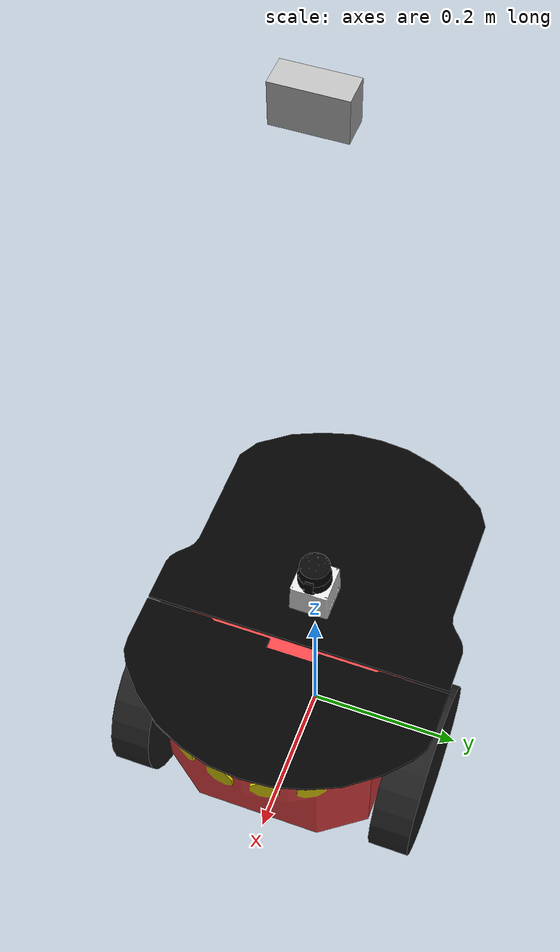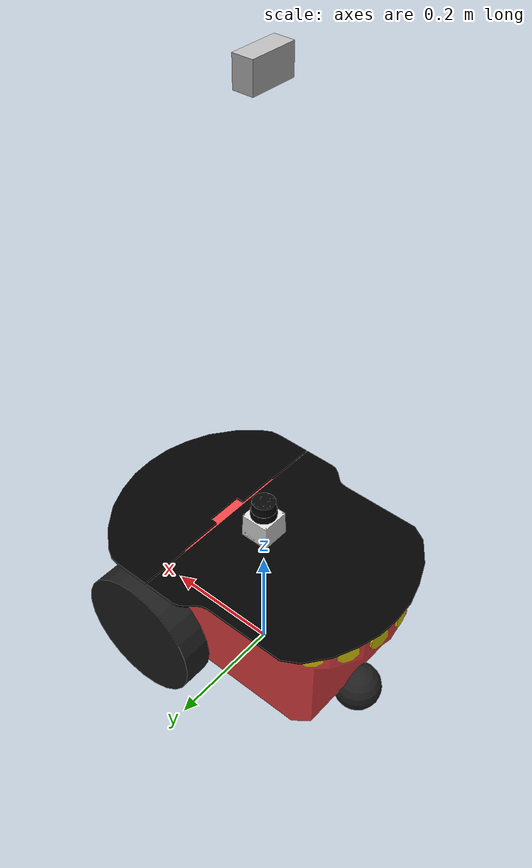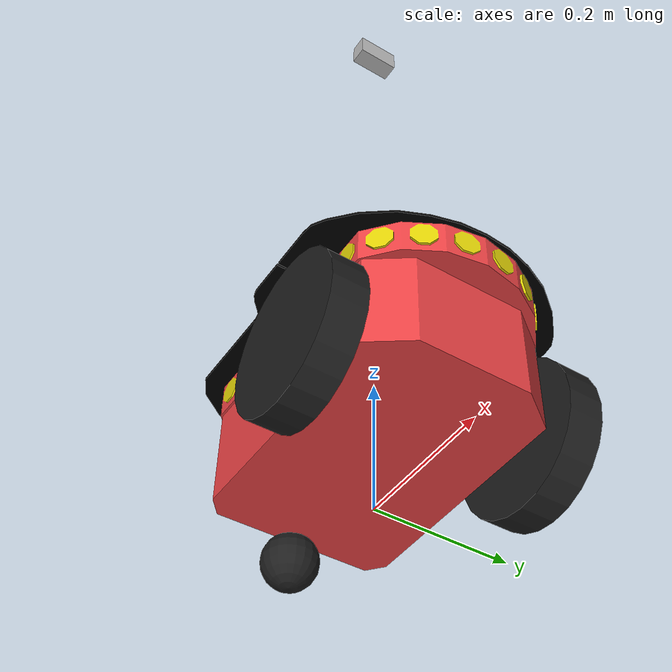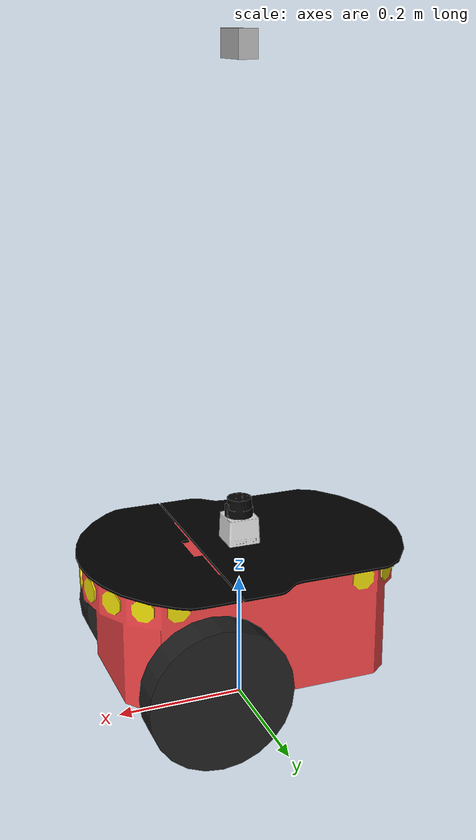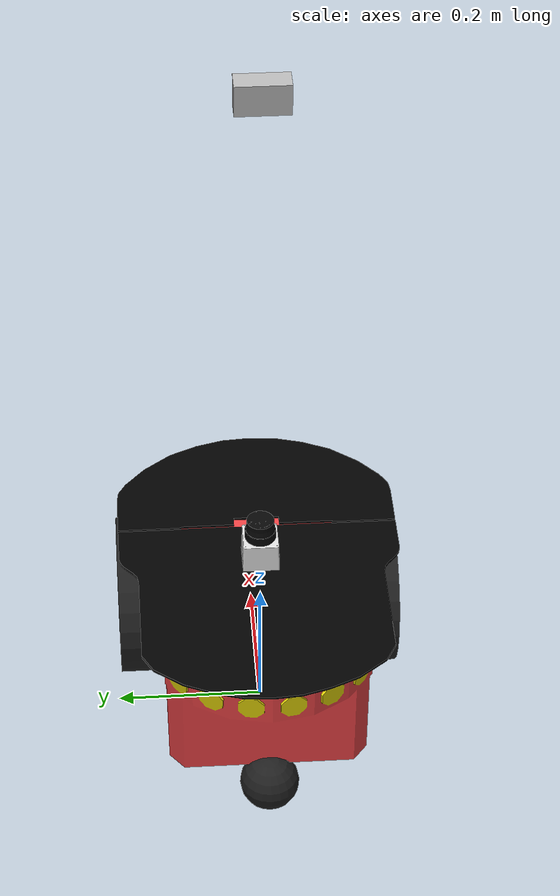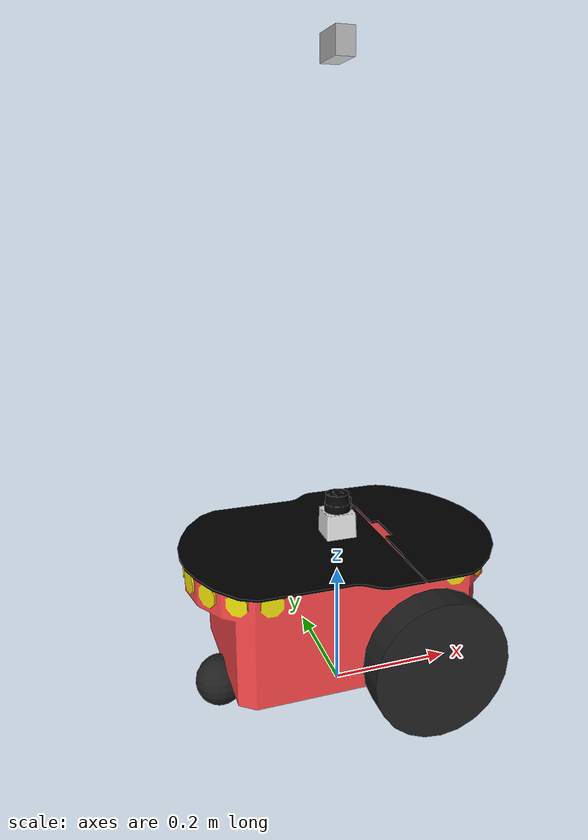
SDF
<sdf version='1.6'>
  <model name='sudo'>
    <link name='chassis'>
      <sensor name='chassis_contact' type='contact'>
        <update_rate>30</update_rate>
        <contact>
          <collision>collision</collision>
          <topic>__default_topic__</topic>
        </contact>
        <plugin name='contact_sensor' filename='libcontact.so'/>
      </sensor>
      <pose frame=''>0 0 0.16 0 -0 0</pose>
      <inertial>
        <mass>6</mass>
        <inertia>
          <ixx>0.07</ixx>
          <iyy>0.08</iyy>
          <izz>0.1</izz>
          <ixy>0</ixy>
          <ixz>0</ixz>
          <iyz>0</iyz>
        </inertia>
      </inertial>
      <collision name='collision'>
        <geometry>
          <box>
            <size>0.485 0.25 0.17</size>
          </box>
        </geometry>
      </collision>
      <visual name='visual'>
        <pose frame=''>0 0 0.04 0 -0 0</pose>
        <geometry>
          <mesh>
            <uri>model://pioneer2dx/meshes/chassis.dae</uri>
          </mesh>
        </geometry>
      </visual>
      <collision name='collision'>
        <pose frame=''>-0.2 0 -0.12 0 -0 0</pose>
        <geometry>
          <sphere>
            <radius>0.04</radius>
          </sphere>
        </geometry>
        <surface>
          <friction>
            <ode>
              <mu>0</mu>
              <mu2>0</mu2>
              <slip1>inf</slip1>
              <slip2>inf</slip2>
            </ode>
          </friction>
        </surface>
      </collision>
      <visual name='castor_visual'>
        <pose frame=''>-0.2 0 -0.12 0 -0 0</pose>
        <geometry>
          <sphere>
            <radius>0.04</radius>
          </sphere>
        </geometry>
        <material>
          <script>
            <uri>file://media/materials/scripts/gazebo.material</uri>
            <name>Gazebo/FlatBlack</name>
          </script>
        </material>
      </visual>
    </link>
    <link name='right_wheel'>
      <pose frame=''>0.1 -0.17 0.11 -0 1.5707 1.5707</pose>
      <inertial>
        <mass>0.5</mass>
        <inertia>
          <ixx>0.07</ixx>
          <iyy>0.08</iyy>
          <izz>0.1</izz>
          <ixy>0</ixy>
          <ixz>0</ixz>
          <iyz>0</iyz>
        </inertia>
      </inertial>
      <collision name='collision'>
        <geometry>
          <cylinder>
            <radius>0.11</radius>
            <length>0.05</length>
          </cylinder>
        </geometry>
        <surface>
          <friction>
            <ode>
              <mu>inf</mu>
            </ode>
          </friction>
        </surface>
      </collision>
      <visual name='visual'>
        <geometry>
          <cylinder>
            <radius>0.11</radius>
            <length>0.05</length>
          </cylinder>
        </geometry>
        <material>
          <script>
            <uri>file://media/materials/scripts/gazebo.material</uri>
            <name>Gazebo/FlatBlack</name>
          </script>
        </material>
      </visual>
    </link>
    <link name='left_wheel'>
      <pose frame=''>0.1 0.17 0.11 -0 1.5707 1.5707</pose>
      <inertial>
        <mass>0.5</mass>
        <inertia>
          <ixx>0.07</ixx>
          <iyy>0.08</iyy>
          <izz>0.1</izz>
          <ixy>0</ixy>
          <ixz>0</ixz>
          <iyz>0</iyz>
        </inertia>
      </inertial>
      <collision name='collision'>
        <geometry>
          <cylinder>
            <radius>0.11</radius>
            <length>0.05</length>
          </cylinder>
        </geometry>
        <surface>
          <friction>
            <ode>
              <mu>inf</mu>
            </ode>
          </friction>
        </surface>
      </collision>
      <visual name='visual'>
        <geometry>
          <cylinder>
            <radius>0.11</radius>
            <length>0.05</length>
          </cylinder>
        </geometry>
        <material>
          <script>
            <uri>file://media/materials/scripts/gazebo.material</uri>
            <name>Gazebo/FlatBlack</name>
          </script>
        </material>
      </visual>
    </link>
    <link name='sick_laser'>
      <pose frame=''>0 0 0.3 0 -0 3.14</pose>
      <inertial>
        <mass>0.1</mass>
        <inertia>
          <ixx>0.07</ixx>
          <iyy>0.08</iyy>
          <izz>0.1</izz>
          <ixy>0</ixy>
          <ixz>0</ixz>
          <iyz>0</iyz>
        </inertia>
      </inertial>
      <visual name='visual'>
        <geometry>
          <mesh>
            <uri>model://hokuyo/meshes/hokuyo.dae</uri>
          </mesh>
        </geometry>
      </visual>
      <sensor name='head_hokuyo_sensor' type='gpu_ray'>
        <pose frame=''>0 0 0 0 -0 0</pose>
        <visualize>0</visualize>
        <update_rate>30</update_rate>
        <ray>
          <scan>
            <horizontal>
              <samples>360</samples>
              <resolution>1</resolution>
              <min_angle>-3.14</min_angle>
              <max_angle>3.14</max_angle>
            </horizontal>
          </scan>
          <range>
            <min>0.05</min>
            <max>10</max>
            <resolution>0.01</resolution>
          </range>
          <noise>
            <type>gaussian</type>
            <mean>0</mean>
            <stddev>0.01</stddev>
          </noise>
        </ray>
        <plugin name='gazebo_ros_head_hokuyo_controller' filename='libgazebo_ros_gpu_laser.so'>
          <topicName>/sudo/laser/scan</topicName>
          <frameName>laser_link</frameName>
        </plugin>
      </sensor>
    </link>
    <link name='cam_link'>
      <pose frame=''>0 0 1 0 -0 0</pose>
      <inertial>
        <mass>0.1</mass>
        <inertia>
          <ixx>0.07</ixx>
          <iyy>0.08</iyy>
          <izz>0.1</izz>
          <ixy>0</ixy>
          <ixz>0</ixz>
          <iyz>0</iyz>
        </inertia>
      </inertial>
      <collision name='collision'>
        <geometry>
          <box>
            <size>0.029 0.068 0.04</size>
          </box>
        </geometry>
      </collision>
      <visual name='visual'>
        <geometry>
          <box>
            <size>0.029 0.068 0.04</size>
          </box>
        </geometry>
      </visual>
      <sensor name='camera' type='camera'>
        <camera name='__default__'>
          <horizontal_fov>1.047</horizontal_fov>
          <image>
            <width>320</width>
            <height>240</height>
          </image>
          <clip>
            <near>0.05</near>
            <far>10</far>
          </clip>
        </camera>
        <always_on>1</always_on>
        <update_rate>30</update_rate>
        <visualize>1</visualize>
        <plugin name='camera_controller' filename='libgazebo_ros_camera.so'>
          <alwaysOn>true</alwaysOn>
          <updateRate>30.0</updateRate>
          <cameraName>sudo/bottom_webcam</cameraName>
          <imageTopicName>image_raw</imageTopicName>
          <cameraInfoTopicName>camera_info</cameraInfoTopicName>
          <frameName>webcam_link</frameName>
          <hackBaseline>0.07</hackBaseline>
          <distortionK1>0.0</distortionK1>
          <distortionK2>0.0</distortionK2>
          <distortionK3>0.0</distortionK3>
          <distortionT1>0.0</distortionT1>
          <distortionT2>0.0</distortionT2>
        </plugin>
      </sensor>
    </link>
    <joint name='laser_to_chassis' type='revolute'>
      <pose frame=''>0 0 0 0 -0 0</pose>
      <child>sick_laser</child>
      <parent>chassis</parent>
      <axis>
        <xyz>0 0 1</xyz>
        <limit>
          <upper>0</upper>
          <lower>0</lower>
        </limit>
        <use_parent_model_frame>0</use_parent_model_frame>
      </axis>
    </joint>
    <joint name='cam_link_to_chassis' type='revolute'>
      <pose frame=''>0 0 1 0 -0 0</pose>
      <child>cam_link</child>
      <parent>chassis</parent>
      <axis>
        <xyz>0 0 1</xyz>
        <limit>
          <upper>0</upper>
          <lower>0</lower>
        </limit>
        <use_parent_model_frame>0</use_parent_model_frame>
      </axis>
    </joint>
    <joint name='left_wheel_hinge' type='revolute'>
      <pose frame=''>0 0 0.03 0 -0 0</pose>
      <child>left_wheel</child>
      <parent>chassis</parent>
      <axis>
        <xyz>0 1 0</xyz>
        <use_parent_model_frame>0</use_parent_model_frame>
        <limit>
          <lower>-1e+16</lower>
          <upper>1e+16</upper>
        </limit>
      </axis>
    </joint>
    <joint name='right_wheel_hinge' type='revolute'>
      <pose frame=''>0 0 -0.03 0 -0 0</pose>
      <child>right_wheel</child>
      <parent>chassis</parent>
      <axis>
        <xyz>0 1 0</xyz>
        <use_parent_model_frame>0</use_parent_model_frame>
        <limit>
          <lower>-1e+16</lower>
          <upper>1e+16</upper>
        </limit>
      </axis>
    </joint>
    <plugin name='object_controller' filename='libgazebo_ros_planar_move.so'>
      <odometryRate>20.0</odometryRate>
      <robotBaseFrame>base_link</robotBaseFrame>
    </plugin>
  </model>
</sdf>
